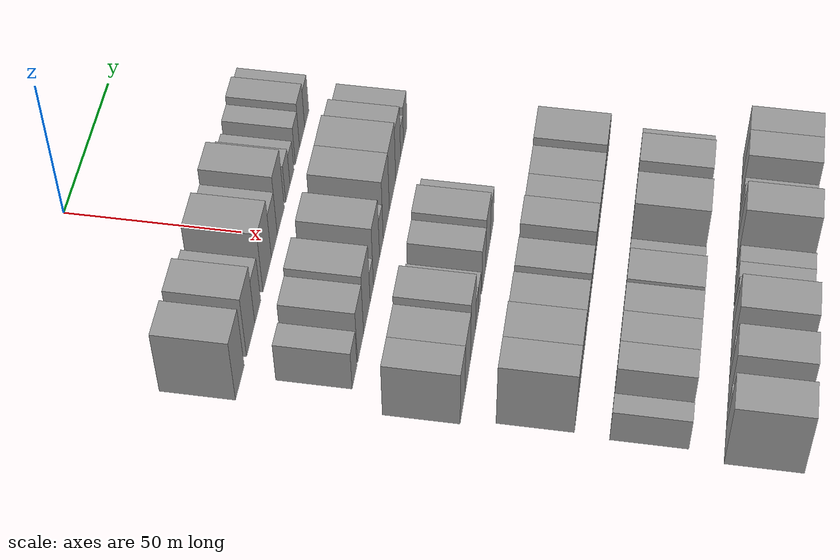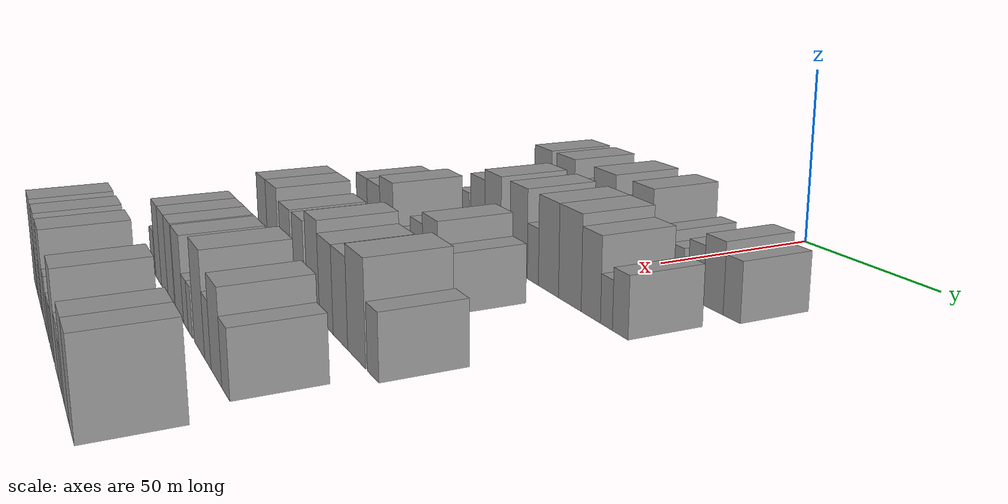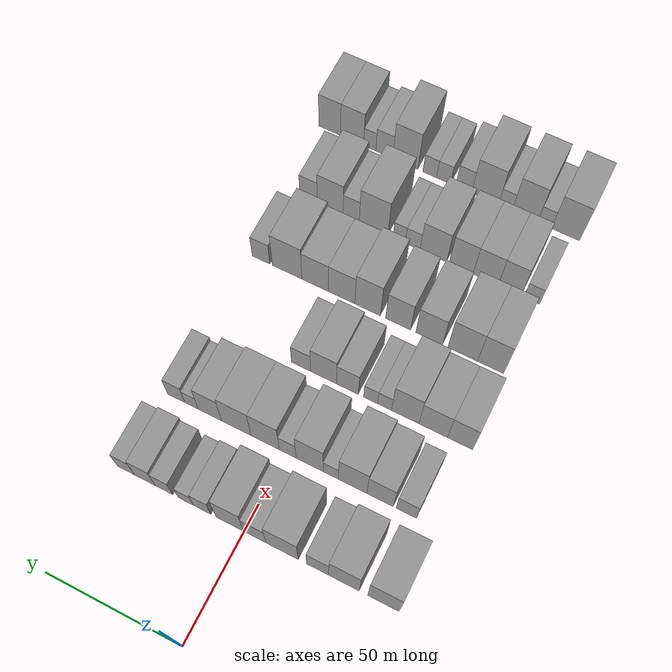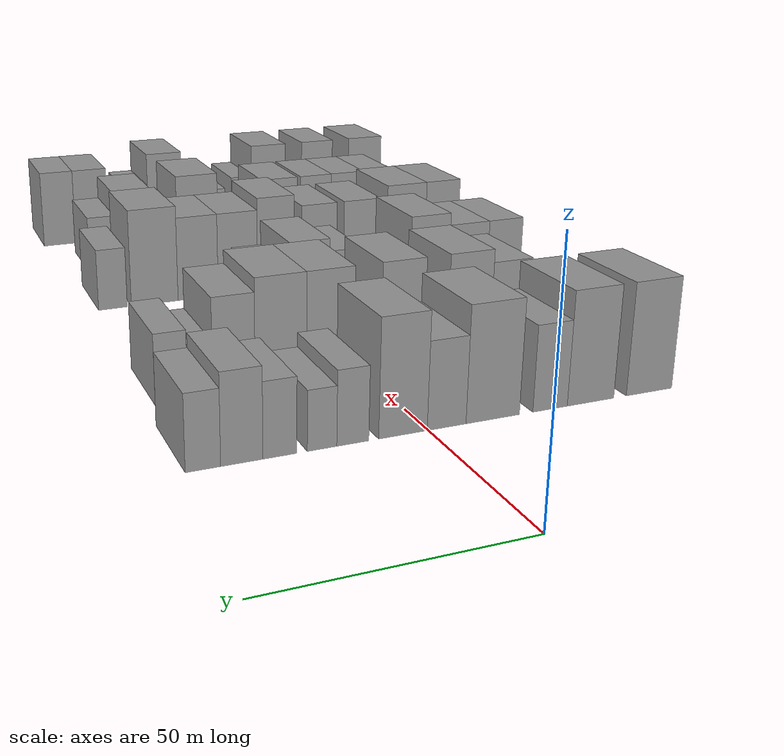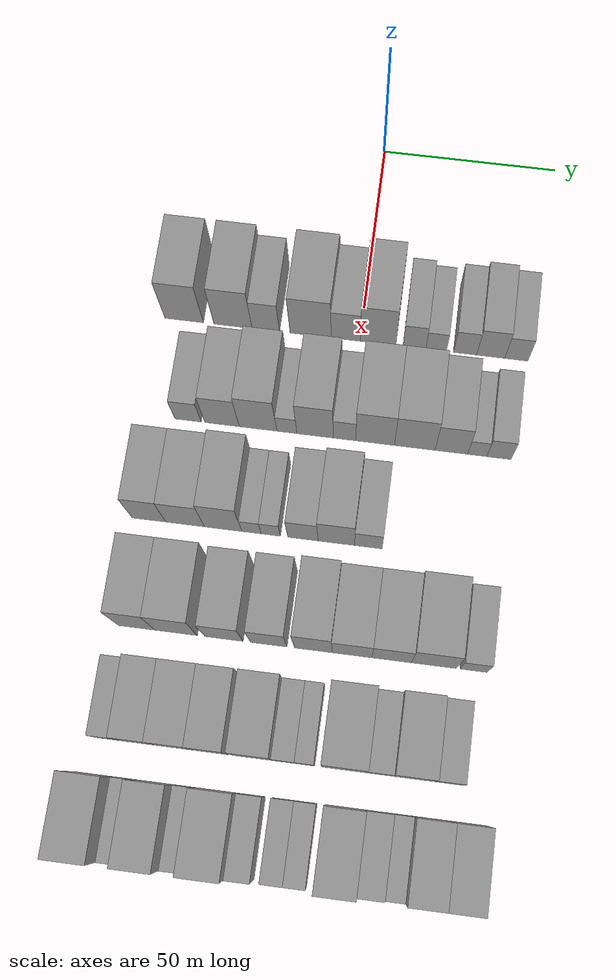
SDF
<sdf version="1.6">
 <world name="default">
  <model name="building_50">
   <static>1</static>
   <pose>50.0000 -49.7501 0 0.000000 0.000000 0.000000</pose>
   <link name="link">
    <pose>0 0 12.00 0 0 0</pose>
    <collision name="collision"><geometry><box><size>20.0000 10.9593 24.0000</size></box></geometry></collision>
    <visual name="visual">
     <cast_shadows>0</cast_shadows>
     <geometry><box><size>20.0000 10.9593 24.0000</size></box></geometry>
     <material>
      <script>
       <uri>model://grey_wall/materials/scripts</uri>
       <uri>model://grey_wall/materials/textures</uri>
       <name>vrc/grey_wall</name>
      </script>
     </material>
    </visual>
   </link>
  </model>
  <model name="building_51">
   <static>1</static>
   <pose>50.0000 -35.8641 0 0.000000 0.000000 0.000000</pose>
   <link name="link">
    <pose>0 0 12.00 0 0 0</pose>
    <collision name="collision"><geometry><box><size>20.0000 10.8127 24.0000</size></box></geometry></collision>
    <visual name="visual">
     <cast_shadows>0</cast_shadows>
     <geometry><box><size>20.0000 10.8127 24.0000</size></box></geometry>
     <material>
      <script>
       <uri>model://grey_wall/materials/scripts</uri>
       <uri>model://grey_wall/materials/textures</uri>
       <name>vrc/grey_wall</name>
      </script>
     </material>
    </visual>
   </link>
  </model>
  <model name="building_52">
   <static>1</static>
   <pose>50.0000 -26.5562 0 0.000000 0.000000 0.000000</pose>
   <link name="link">
    <pose>0 0 9.00 0 0 0</pose>
    <collision name="collision"><geometry><box><size>20.0000 7.8030 18.0000</size></box></geometry></collision>
    <visual name="visual">
     <cast_shadows>0</cast_shadows>
     <geometry><box><size>20.0000 7.8030 18.0000</size></box></geometry>
     <material>
      <script>
       <uri>model://grey_wall/materials/scripts</uri>
       <uri>model://grey_wall/materials/textures</uri>
       <name>vrc/grey_wall</name>
      </script>
     </material>
    </visual>
   </link>
  </model>
  <model name="building_53">
   <static>1</static>
   <pose>50.0000 -13.8283 0 0.000000 0.000000 0.000000</pose>
   <link name="link">
    <pose>0 0 12.00 0 0 0</pose>
    <collision name="collision"><geometry><box><size>20.0000 11.6527 24.0000</size></box></geometry></collision>
    <visual name="visual">
     <cast_shadows>0</cast_shadows>
     <geometry><box><size>20.0000 11.6527 24.0000</size></box></geometry>
     <material>
      <script>
       <uri>model://grey_wall/materials/scripts</uri>
       <uri>model://grey_wall/materials/textures</uri>
       <name>vrc/grey_wall</name>
      </script>
     </material>
    </visual>
   </link>
  </model>
  <model name="building_54">
   <static>1</static>
   <pose>50.0000 -3.8962 0 0.000000 0.000000 0.000000</pose>
   <link name="link">
    <pose>0 0 9.00 0 0 0</pose>
    <collision name="collision"><geometry><box><size>20.0000 8.2115 18.0000</size></box></geometry></collision>
    <visual name="visual">
     <cast_shadows>0</cast_shadows>
     <geometry><box><size>20.0000 8.2115 18.0000</size></box></geometry>
     <material>
      <script>
       <uri>model://grey_wall/materials/scripts</uri>
       <uri>model://grey_wall/materials/textures</uri>
       <name>vrc/grey_wall</name>
      </script>
     </material>
    </visual>
   </link>
  </model>
  <model name="building_55">
   <static>1</static>
   <pose>50.0000 5.2146 0 0.000000 0.000000 0.000000</pose>
   <link name="link">
    <pose>0 0 12.00 0 0 0</pose>
    <collision name="collision"><geometry><box><size>20.0000 10.0101 24.0000</size></box></geometry></collision>
    <visual name="visual">
     <cast_shadows>0</cast_shadows>
     <geometry><box><size>20.0000 10.0101 24.0000</size></box></geometry>
     <material>
      <script>
       <uri>model://grey_wall/materials/scripts</uri>
       <uri>model://grey_wall/materials/textures</uri>
       <name>vrc/grey_wall</name>
      </script>
     </material>
    </visual>
   </link>
  </model>
  <model name="building_56">
   <static>1</static>
   <pose>50.0000 15.4160 0 0.000000 0.000000 0.000000</pose>
   <link name="link">
    <pose>0 0 7.50 0 0 0</pose>
    <collision name="collision"><geometry><box><size>20.0000 6.3928 15.0000</size></box></geometry></collision>
    <visual name="visual">
     <cast_shadows>0</cast_shadows>
     <geometry><box><size>20.0000 6.3928 15.0000</size></box></geometry>
     <material>
      <script>
       <uri>model://grey_wall/materials/scripts</uri>
       <uri>model://grey_wall/materials/textures</uri>
       <name>vrc/grey_wall</name>
      </script>
     </material>
    </visual>
   </link>
  </model>
  <model name="building_57">
   <static>1</static>
   <pose>50.0000 21.5016 0 0.000000 0.000000 0.000000</pose>
   <link name="link">
    <pose>0 0 6.00 0 0 0</pose>
    <collision name="collision"><geometry><box><size>20.0000 5.7785 12.0000</size></box></geometry></collision>
    <visual name="visual">
     <cast_shadows>0</cast_shadows>
     <geometry><box><size>20.0000 5.7785 12.0000</size></box></geometry>
     <material>
      <script>
       <uri>model://grey_wall/materials/scripts</uri>
       <uri>model://grey_wall/materials/textures</uri>
       <name>vrc/grey_wall</name>
      </script>
     </material>
    </visual>
   </link>
  </model>
  <model name="building_58">
   <static>1</static>
   <pose>50.0000 29.6361 0 0.000000 0.000000 0.000000</pose>
   <link name="link">
    <pose>0 0 7.50 0 0 0</pose>
    <collision name="collision"><geometry><box><size>20.0000 6.4904 15.0000</size></box></geometry></collision>
    <visual name="visual">
     <cast_shadows>0</cast_shadows>
     <geometry><box><size>20.0000 6.4904 15.0000</size></box></geometry>
     <material>
      <script>
       <uri>model://grey_wall/materials/scripts</uri>
       <uri>model://grey_wall/materials/textures</uri>
       <name>vrc/grey_wall</name>
      </script>
     </material>
    </visual>
   </link>
  </model>
  <model name="building_59">
   <static>1</static>
   <pose>50.0000 36.8214 0 0.000000 0.000000 0.000000</pose>
   <link name="link">
    <pose>0 0 9.00 0 0 0</pose>
    <collision name="collision"><geometry><box><size>20.0000 7.8803 18.0000</size></box></geometry></collision>
    <visual name="visual">
     <cast_shadows>0</cast_shadows>
     <geometry><box><size>20.0000 7.8803 18.0000</size></box></geometry>
     <material>
      <script>
       <uri>model://grey_wall/materials/scripts</uri>
       <uri>model://grey_wall/materials/textures</uri>
       <name>vrc/grey_wall</name>
      </script>
     </material>
    </visual>
   </link>
  </model>
  <model name="building_60">
   <static>1</static>
   <pose>50.0000 44.0002 0 0.000000 0.000000 0.000000</pose>
   <link name="link">
    <pose>0 0 7.50 0 0 0</pose>
    <collision name="collision"><geometry><box><size>20.0000 6.4773 15.0000</size></box></geometry></collision>
    <visual name="visual">
     <cast_shadows>0</cast_shadows>
     <geometry><box><size>20.0000 6.4773 15.0000</size></box></geometry>
     <material>
      <script>
       <uri>model://grey_wall/materials/scripts</uri>
       <uri>model://grey_wall/materials/textures</uri>
       <name>vrc/grey_wall</name>
      </script>
     </material>
    </visual>
   </link>
  </model>
  <model name="building_166">
   <static>1</static>
   <pose>79.0000 -43.9204 0 0.000000 0.000000 0.000000</pose>
   <link name="link">
    <pose>0 0 7.50 0 0 0</pose>
    <collision name="collision"><geometry><box><size>20.0000 7.3100 15.0000</size></box></geometry></collision>
    <visual name="visual">
     <cast_shadows>0</cast_shadows>
     <geometry><box><size>20.0000 7.3100 15.0000</size></box></geometry>
     <material>
      <script>
       <uri>model://grey_wall/materials/scripts</uri>
       <uri>model://grey_wall/materials/textures</uri>
       <name>vrc/grey_wall</name>
      </script>
     </material>
    </visual>
   </link>
  </model>
  <model name="building_167">
   <static>1</static>
   <pose>79.0000 -34.4893 0 0.000000 0.000000 0.000000</pose>
   <link name="link">
    <pose>0 0 10.50 0 0 0</pose>
    <collision name="collision"><geometry><box><size>20.0000 9.5522 21.0000</size></box></geometry></collision>
    <visual name="visual">
     <cast_shadows>0</cast_shadows>
     <geometry><box><size>20.0000 9.5522 21.0000</size></box></geometry>
     <material>
      <script>
       <uri>model://grey_wall/materials/scripts</uri>
       <uri>model://grey_wall/materials/textures</uri>
       <name>vrc/grey_wall</name>
      </script>
     </material>
    </visual>
   </link>
  </model>
  <model name="building_168">
   <static>1</static>
   <pose>79.0000 -24.4918 0 0.000000 0.000000 0.000000</pose>
   <link name="link">
    <pose>0 0 12.00 0 0 0</pose>
    <collision name="collision"><geometry><box><size>20.0000 10.4428 24.0000</size></box></geometry></collision>
    <visual name="visual">
     <cast_shadows>0</cast_shadows>
     <geometry><box><size>20.0000 10.4428 24.0000</size></box></geometry>
     <material>
      <script>
       <uri>model://grey_wall/materials/scripts</uri>
       <uri>model://grey_wall/materials/textures</uri>
       <name>vrc/grey_wall</name>
      </script>
     </material>
    </visual>
   </link>
  </model>
  <model name="building_169">
   <static>1</static>
   <pose>79.0000 -16.5042 0 0.000000 0.000000 0.000000</pose>
   <link name="link">
    <pose>0 0 6.00 0 0 0</pose>
    <collision name="collision"><geometry><box><size>20.0000 5.5323 12.0000</size></box></geometry></collision>
    <visual name="visual">
     <cast_shadows>0</cast_shadows>
     <geometry><box><size>20.0000 5.5323 12.0000</size></box></geometry>
     <material>
      <script>
       <uri>model://grey_wall/materials/scripts</uri>
       <uri>model://grey_wall/materials/textures</uri>
       <name>vrc/grey_wall</name>
      </script>
     </material>
    </visual>
   </link>
  </model>
  <model name="building_170">
   <static>1</static>
   <pose>79.0000 -8.7100 0 0.000000 0.000000 0.000000</pose>
   <link name="link">
    <pose>0 0 12.00 0 0 0</pose>
    <collision name="collision"><geometry><box><size>20.0000 10.0562 24.0000</size></box></geometry></collision>
    <visual name="visual">
     <cast_shadows>0</cast_shadows>
     <geometry><box><size>20.0000 10.0562 24.0000</size></box></geometry>
     <material>
      <script>
       <uri>model://grey_wall/materials/scripts</uri>
       <uri>model://grey_wall/materials/textures</uri>
       <name>vrc/grey_wall</name>
      </script>
     </material>
    </visual>
   </link>
  </model>
  <model name="building_171">
   <static>1</static>
   <pose>79.0000 -0.5841 0 0.000000 0.000000 0.000000</pose>
   <link name="link">
    <pose>0 0 7.50 0 0 0</pose>
    <collision name="collision"><geometry><box><size>20.0000 6.1955 15.0000</size></box></geometry></collision>
    <visual name="visual">
     <cast_shadows>0</cast_shadows>
     <geometry><box><size>20.0000 6.1955 15.0000</size></box></geometry>
     <material>
      <script>
       <uri>model://grey_wall/materials/scripts</uri>
       <uri>model://grey_wall/materials/textures</uri>
       <name>vrc/grey_wall</name>
      </script>
     </material>
    </visual>
   </link>
  </model>
  <model name="building_172">
   <static>1</static>
   <pose>79.0000 7.8289 0 0.000000 0.000000 0.000000</pose>
   <link name="link">
    <pose>0 0 12.00 0 0 0</pose>
    <collision name="collision"><geometry><box><size>20.0000 10.6306 24.0000</size></box></geometry></collision>
    <visual name="visual">
     <cast_shadows>0</cast_shadows>
     <geometry><box><size>20.0000 10.6306 24.0000</size></box></geometry>
     <material>
      <script>
       <uri>model://grey_wall/materials/scripts</uri>
       <uri>model://grey_wall/materials/textures</uri>
       <name>vrc/grey_wall</name>
      </script>
     </material>
    </visual>
   </link>
  </model>
  <model name="building_173">
   <static>1</static>
   <pose>79.0000 18.7126 0 0.000000 0.000000 0.000000</pose>
   <link name="link">
    <pose>0 0 12.00 0 0 0</pose>
    <collision name="collision"><geometry><box><size>20.0000 11.1369 24.0000</size></box></geometry></collision>
    <visual name="visual">
     <cast_shadows>0</cast_shadows>
     <geometry><box><size>20.0000 11.1369 24.0000</size></box></geometry>
     <material>
      <script>
       <uri>model://grey_wall/materials/scripts</uri>
       <uri>model://grey_wall/materials/textures</uri>
       <name>vrc/grey_wall</name>
      </script>
     </material>
    </visual>
   </link>
  </model>
  <model name="building_174">
   <static>1</static>
   <pose>79.0000 28.7517 0 0.000000 0.000000 0.000000</pose>
   <link name="link">
    <pose>0 0 10.50 0 0 0</pose>
    <collision name="collision"><geometry><box><size>20.0000 8.9412 21.0000</size></box></geometry></collision>
    <visual name="visual">
     <cast_shadows>0</cast_shadows>
     <geometry><box><size>20.0000 8.9412 21.0000</size></box></geometry>
     <material>
      <script>
       <uri>model://grey_wall/materials/scripts</uri>
       <uri>model://grey_wall/materials/textures</uri>
       <name>vrc/grey_wall</name>
      </script>
     </material>
    </visual>
   </link>
  </model>
  <model name="building_175">
   <static>1</static>
   <pose>79.0000 35.8405 0 0.000000 0.000000 0.000000</pose>
   <link name="link">
    <pose>0 0 6.00 0 0 0</pose>
    <collision name="collision"><geometry><box><size>20.0000 5.2366 12.0000</size></box></geometry></collision>
    <visual name="visual">
     <cast_shadows>0</cast_shadows>
     <geometry><box><size>20.0000 5.2366 12.0000</size></box></geometry>
     <material>
      <script>
       <uri>model://grey_wall/materials/scripts</uri>
       <uri>model://grey_wall/materials/textures</uri>
       <name>vrc/grey_wall</name>
      </script>
     </material>
    </visual>
   </link>
  </model>
  <model name="building_176">
   <static>1</static>
   <pose>79.0000 41.7694 0 0.000000 0.000000 0.000000</pose>
   <link name="link">
    <pose>0 0 7.50 0 0 0</pose>
    <collision name="collision"><geometry><box><size>20.0000 6.6211 15.0000</size></box></geometry></collision>
    <visual name="visual">
     <cast_shadows>0</cast_shadows>
     <geometry><box><size>20.0000 6.6211 15.0000</size></box></geometry>
     <material>
      <script>
       <uri>model://grey_wall/materials/scripts</uri>
       <uri>model://grey_wall/materials/textures</uri>
       <name>vrc/grey_wall</name>
      </script>
     </material>
    </visual>
   </link>
  </model>
  <model name="building_281">
   <static>1</static>
   <pose>108.0000 -49.8427 0 0.000000 0.000000 0.000000</pose>
   <link name="link">
    <pose>0 0 10.50 0 0 0</pose>
    <collision name="collision"><geometry><box><size>20.0000 9.1666 21.0000</size></box></geometry></collision>
    <visual name="visual">
     <cast_shadows>0</cast_shadows>
     <geometry><box><size>20.0000 9.1666 21.0000</size></box></geometry>
     <material>
      <script>
       <uri>model://grey_wall/materials/scripts</uri>
       <uri>model://grey_wall/materials/textures</uri>
       <name>vrc/grey_wall</name>
      </script>
     </material>
    </visual>
   </link>
  </model>
  <model name="building_282">
   <static>1</static>
   <pose>108.0000 -40.0151 0 0.000000 0.000000 0.000000</pose>
   <link name="link">
    <pose>0 0 10.50 0 0 0</pose>
    <collision name="collision"><geometry><box><size>20.0000 10.4887 21.0000</size></box></geometry></collision>
    <visual name="visual">
     <cast_shadows>0</cast_shadows>
     <geometry><box><size>20.0000 10.4887 21.0000</size></box></geometry>
     <material>
      <script>
       <uri>model://grey_wall/materials/scripts</uri>
       <uri>model://grey_wall/materials/textures</uri>
       <name>vrc/grey_wall</name>
      </script>
     </material>
    </visual>
   </link>
  </model>
  <model name="building_283">
   <static>1</static>
   <pose>108.0000 -29.6814 0 0.000000 0.000000 0.000000</pose>
   <link name="link">
    <pose>0 0 12.00 0 0 0</pose>
    <collision name="collision"><geometry><box><size>20.0000 10.1786 24.0000</size></box></geometry></collision>
    <visual name="visual">
     <cast_shadows>0</cast_shadows>
     <geometry><box><size>20.0000 10.1786 24.0000</size></box></geometry>
     <material>
      <script>
       <uri>model://grey_wall/materials/scripts</uri>
       <uri>model://grey_wall/materials/textures</uri>
       <name>vrc/grey_wall</name>
      </script>
     </material>
    </visual>
   </link>
  </model>
  <model name="building_284">
   <static>1</static>
   <pose>108.0000 -21.9924 0 0.000000 0.000000 0.000000</pose>
   <link name="link">
    <pose>0 0 6.00 0 0 0</pose>
    <collision name="collision"><geometry><box><size>20.0000 5.1992 12.0000</size></box></geometry></collision>
    <visual name="visual">
     <cast_shadows>0</cast_shadows>
     <geometry><box><size>20.0000 5.1992 12.0000</size></box></geometry>
     <material>
      <script>
       <uri>model://grey_wall/materials/scripts</uri>
       <uri>model://grey_wall/materials/textures</uri>
       <name>vrc/grey_wall</name>
      </script>
     </material>
    </visual>
   </link>
  </model>
  <model name="building_285">
   <static>1</static>
   <pose>108.0000 -16.7967 0 0.000000 0.000000 0.000000</pose>
   <link name="link">
    <pose>0 0 6.00 0 0 0</pose>
    <collision name="collision"><geometry><box><size>20.0000 5.1923 12.0000</size></box></geometry></collision>
    <visual name="visual">
     <cast_shadows>0</cast_shadows>
     <geometry><box><size>20.0000 5.1923 12.0000</size></box></geometry>
     <material>
      <script>
       <uri>model://grey_wall/materials/scripts</uri>
       <uri>model://grey_wall/materials/textures</uri>
       <name>vrc/grey_wall</name>
      </script>
     </material>
    </visual>
   </link>
  </model>
  <model name="building_286">
   <static>1</static>
   <pose>108.0000 -8.1051 0 0.000000 0.000000 0.000000</pose>
   <link name="link">
    <pose>0 0 9.00 0 0 0</pose>
    <collision name="collision"><geometry><box><size>20.0000 8.1909 18.0000</size></box></geometry></collision>
    <visual name="visual">
     <cast_shadows>0</cast_shadows>
     <geometry><box><size>20.0000 8.1909 18.0000</size></box></geometry>
     <material>
      <script>
       <uri>model://grey_wall/materials/scripts</uri>
       <uri>model://grey_wall/materials/textures</uri>
       <name>vrc/grey_wall</name>
      </script>
     </material>
    </visual>
   </link>
  </model>
  <model name="building_287">
   <static>1</static>
   <pose>108.0000 0.8956 0 0.000000 0.000000 0.000000</pose>
   <link name="link">
    <pose>0 0 10.50 0 0 0</pose>
    <collision name="collision"><geometry><box><size>20.0000 9.8105 21.0000</size></box></geometry></collision>
    <visual name="visual">
     <cast_shadows>0</cast_shadows>
     <geometry><box><size>20.0000 9.8105 21.0000</size></box></geometry>
     <material>
      <script>
       <uri>model://grey_wall/materials/scripts</uri>
       <uri>model://grey_wall/materials/textures</uri>
       <name>vrc/grey_wall</name>
      </script>
     </material>
    </visual>
   </link>
  </model>
  <model name="building_288">
   <static>1</static>
   <pose>108.0000 9.4879 0 0.000000 0.000000 0.000000</pose>
   <link name="link">
    <pose>0 0 7.50 0 0 0</pose>
    <collision name="collision"><geometry><box><size>20.0000 7.3741 15.0000</size></box></geometry></collision>
    <visual name="visual">
     <cast_shadows>0</cast_shadows>
     <geometry><box><size>20.0000 7.3741 15.0000</size></box></geometry>
     <material>
      <script>
       <uri>model://grey_wall/materials/scripts</uri>
       <uri>model://grey_wall/materials/textures</uri>
       <name>vrc/grey_wall</name>
      </script>
     </material>
    </visual>
   </link>
  </model>
  <model name="building_389">
   <static>1</static>
   <pose>137.0000 -48.0488 0 0.000000 0.000000 0.000000</pose>
   <link name="link">
    <pose>0 0 12.00 0 0 0</pose>
    <collision name="collision"><geometry><box><size>20.0000 9.7121 24.0000</size></box></geometry></collision>
    <visual name="visual">
     <cast_shadows>0</cast_shadows>
     <geometry><box><size>20.0000 9.7121 24.0000</size></box></geometry>
     <material>
      <script>
       <uri>model://grey_wall/materials/scripts</uri>
       <uri>model://grey_wall/materials/textures</uri>
       <name>vrc/grey_wall</name>
      </script>
     </material>
    </visual>
   </link>
  </model>
  <model name="building_390">
   <static>1</static>
   <pose>137.0000 -37.6220 0 0.000000 0.000000 0.000000</pose>
   <link name="link">
    <pose>0 0 12.00 0 0 0</pose>
    <collision name="collision"><geometry><box><size>20.0000 11.1416 24.0000</size></box></geometry></collision>
    <visual name="visual">
     <cast_shadows>0</cast_shadows>
     <geometry><box><size>20.0000 11.1416 24.0000</size></box></geometry>
     <material>
      <script>
       <uri>model://grey_wall/materials/scripts</uri>
       <uri>model://grey_wall/materials/textures</uri>
       <name>vrc/grey_wall</name>
      </script>
     </material>
    </visual>
   </link>
  </model>
  <model name="building_391">
   <static>1</static>
   <pose>137.0000 -24.9964 0 0.000000 0.000000 0.000000</pose>
   <link name="link">
    <pose>0 0 10.50 0 0 0</pose>
    <collision name="collision"><geometry><box><size>20.0000 10.1095 21.0000</size></box></geometry></collision>
    <visual name="visual">
     <cast_shadows>0</cast_shadows>
     <geometry><box><size>20.0000 10.1095 21.0000</size></box></geometry>
     <material>
      <script>
       <uri>model://grey_wall/materials/scripts</uri>
       <uri>model://grey_wall/materials/textures</uri>
       <name>vrc/grey_wall</name>
      </script>
     </material>
    </visual>
   </link>
  </model>
  <model name="building_392">
   <static>1</static>
   <pose>137.0000 -13.1475 0 0.000000 0.000000 0.000000</pose>
   <link name="link">
    <pose>0 0 10.50 0 0 0</pose>
    <collision name="collision"><geometry><box><size>20.0000 9.5881 21.0000</size></box></geometry></collision>
    <visual name="visual">
     <cast_shadows>0</cast_shadows>
     <geometry><box><size>20.0000 9.5881 21.0000</size></box></geometry>
     <material>
      <script>
       <uri>model://grey_wall/materials/scripts</uri>
       <uri>model://grey_wall/materials/textures</uri>
       <name>vrc/grey_wall</name>
      </script>
     </material>
    </visual>
   </link>
  </model>
  <model name="building_393">
   <static>1</static>
   <pose>137.0000 -1.4034 0 0.000000 0.000000 0.000000</pose>
   <link name="link">
    <pose>0 0 12.00 0 0 0</pose>
    <collision name="collision"><geometry><box><size>20.0000 9.9001 24.0000</size></box></geometry></collision>
    <visual name="visual">
     <cast_shadows>0</cast_shadows>
     <geometry><box><size>20.0000 9.9001 24.0000</size></box></geometry>
     <material>
      <script>
       <uri>model://grey_wall/materials/scripts</uri>
       <uri>model://grey_wall/materials/textures</uri>
       <name>vrc/grey_wall</name>
      </script>
     </material>
    </visual>
   </link>
  </model>
  <model name="building_394">
   <static>1</static>
   <pose>137.0000 8.7396 0 0.000000 0.000000 0.000000</pose>
   <link name="link">
    <pose>0 0 10.50 0 0 0</pose>
    <collision name="collision"><geometry><box><size>20.0000 10.3859 21.0000</size></box></geometry></collision>
    <visual name="visual">
     <cast_shadows>0</cast_shadows>
     <geometry><box><size>20.0000 10.3859 21.0000</size></box></geometry>
     <material>
      <script>
       <uri>model://grey_wall/materials/scripts</uri>
       <uri>model://grey_wall/materials/textures</uri>
       <name>vrc/grey_wall</name>
      </script>
     </material>
    </visual>
   </link>
  </model>
  <model name="building_395">
   <static>1</static>
   <pose>137.0000 19.0999 0 0.000000 0.000000 0.000000</pose>
   <link name="link">
    <pose>0 0 10.50 0 0 0</pose>
    <collision name="collision"><geometry><box><size>20.0000 10.3346 21.0000</size></box></geometry></collision>
    <visual name="visual">
     <cast_shadows>0</cast_shadows>
     <geometry><box><size>20.0000 10.3346 21.0000</size></box></geometry>
     <material>
      <script>
       <uri>model://grey_wall/materials/scripts</uri>
       <uri>model://grey_wall/materials/textures</uri>
       <name>vrc/grey_wall</name>
      </script>
     </material>
    </visual>
   </link>
  </model>
  <model name="building_396">
   <static>1</static>
   <pose>137.0000 30.1317 0 0.000000 0.000000 0.000000</pose>
   <link name="link">
    <pose>0 0 12.00 0 0 0</pose>
    <collision name="collision"><geometry><box><size>20.0000 11.7290 24.0000</size></box></geometry></collision>
    <visual name="visual">
     <cast_shadows>0</cast_shadows>
     <geometry><box><size>20.0000 11.7290 24.0000</size></box></geometry>
     <material>
      <script>
       <uri>model://grey_wall/materials/scripts</uri>
       <uri>model://grey_wall/materials/textures</uri>
       <name>vrc/grey_wall</name>
      </script>
     </material>
    </visual>
   </link>
  </model>
  <model name="building_397">
   <static>1</static>
   <pose>137.0000 40.5135 0 0.000000 0.000000 0.000000</pose>
   <link name="link">
    <pose>0 0 7.50 0 0 0</pose>
    <collision name="collision"><geometry><box><size>20.0000 7.0347 15.0000</size></box></geometry></collision>
    <visual name="visual">
     <cast_shadows>0</cast_shadows>
     <geometry><box><size>20.0000 7.0347 15.0000</size></box></geometry>
     <material>
      <script>
       <uri>model://grey_wall/materials/scripts</uri>
       <uri>model://grey_wall/materials/textures</uri>
       <name>vrc/grey_wall</name>
      </script>
     </material>
    </visual>
   </link>
  </model>
  <model name="building_506">
   <static>1</static>
   <pose>166.0000 -50.8666 0 0.000000 0.000000 0.000000</pose>
   <link name="link">
    <pose>0 0 6.00 0 0 0</pose>
    <collision name="collision"><geometry><box><size>20.0000 5.9779 12.0000</size></box></geometry></collision>
    <visual name="visual">
     <cast_shadows>0</cast_shadows>
     <geometry><box><size>20.0000 5.9779 12.0000</size></box></geometry>
     <material>
      <script>
       <uri>model://grey_wall/materials/scripts</uri>
       <uri>model://grey_wall/materials/textures</uri>
       <name>vrc/grey_wall</name>
      </script>
     </material>
    </visual>
   </link>
  </model>
  <model name="building_507">
   <static>1</static>
   <pose>166.0000 -42.5154 0 0.000000 0.000000 0.000000</pose>
   <link name="link">
    <pose>0 0 10.50 0 0 0</pose>
    <collision name="collision"><geometry><box><size>20.0000 8.7244 21.0000</size></box></geometry></collision>
    <visual name="visual">
     <cast_shadows>0</cast_shadows>
     <geometry><box><size>20.0000 8.7244 21.0000</size></box></geometry>
     <material>
      <script>
       <uri>model://grey_wall/materials/scripts</uri>
       <uri>model://grey_wall/materials/textures</uri>
       <name>vrc/grey_wall</name>
      </script>
     </material>
    </visual>
   </link>
  </model>
  <model name="building_508">
   <static>1</static>
   <pose>166.0000 -33.3141 0 0.000000 0.000000 0.000000</pose>
   <link name="link">
    <pose>0 0 10.50 0 0 0</pose>
    <collision name="collision"><geometry><box><size>20.0000 9.6782 21.0000</size></box></geometry></collision>
    <visual name="visual">
     <cast_shadows>0</cast_shadows>
     <geometry><box><size>20.0000 9.6782 21.0000</size></box></geometry>
     <material>
      <script>
       <uri>model://grey_wall/materials/scripts</uri>
       <uri>model://grey_wall/materials/textures</uri>
       <name>vrc/grey_wall</name>
      </script>
     </material>
    </visual>
   </link>
  </model>
  <model name="building_509">
   <static>1</static>
   <pose>166.0000 -23.8594 0 0.000000 0.000000 0.000000</pose>
   <link name="link">
    <pose>0 0 10.50 0 0 0</pose>
    <collision name="collision"><geometry><box><size>20.0000 9.2313 21.0000</size></box></geometry></collision>
    <visual name="visual">
     <cast_shadows>0</cast_shadows>
     <geometry><box><size>20.0000 9.2313 21.0000</size></box></geometry>
     <material>
      <script>
       <uri>model://grey_wall/materials/scripts</uri>
       <uri>model://grey_wall/materials/textures</uri>
       <name>vrc/grey_wall</name>
      </script>
     </material>
    </visual>
   </link>
  </model>
  <model name="building_510">
   <static>1</static>
   <pose>166.0000 -13.0665 0 0.000000 0.000000 0.000000</pose>
   <link name="link">
    <pose>0 0 10.50 0 0 0</pose>
    <collision name="collision"><geometry><box><size>20.0000 10.3544 21.0000</size></box></geometry></collision>
    <visual name="visual">
     <cast_shadows>0</cast_shadows>
     <geometry><box><size>20.0000 10.3544 21.0000</size></box></geometry>
     <material>
      <script>
       <uri>model://grey_wall/materials/scripts</uri>
       <uri>model://grey_wall/materials/textures</uri>
       <name>vrc/grey_wall</name>
      </script>
     </material>
    </visual>
   </link>
  </model>
  <model name="building_511">
   <static>1</static>
   <pose>166.0000 -4.9619 0 0.000000 0.000000 0.000000</pose>
   <link name="link">
    <pose>0 0 6.00 0 0 0</pose>
    <collision name="collision"><geometry><box><size>20.0000 5.8547 12.0000</size></box></geometry></collision>
    <visual name="visual">
     <cast_shadows>0</cast_shadows>
     <geometry><box><size>20.0000 5.8547 12.0000</size></box></geometry>
     <material>
      <script>
       <uri>model://grey_wall/materials/scripts</uri>
       <uri>model://grey_wall/materials/textures</uri>
       <name>vrc/grey_wall</name>
      </script>
     </material>
    </visual>
   </link>
  </model>
  <model name="building_512">
   <static>1</static>
   <pose>166.0000 0.3840 0 0.000000 0.000000 0.000000</pose>
   <link name="link">
    <pose>0 0 6.00 0 0 0</pose>
    <collision name="collision"><geometry><box><size>20.0000 4.8372 12.0000</size></box></geometry></collision>
    <visual name="visual">
     <cast_shadows>0</cast_shadows>
     <geometry><box><size>20.0000 4.8372 12.0000</size></box></geometry>
     <material>
      <script>
       <uri>model://grey_wall/materials/scripts</uri>
       <uri>model://grey_wall/materials/textures</uri>
       <name>vrc/grey_wall</name>
      </script>
     </material>
    </visual>
   </link>
  </model>
  <model name="building_513">
   <static>1</static>
   <pose>166.0000 10.5125 0 0.000000 0.000000 0.000000</pose>
   <link name="link">
    <pose>0 0 12.00 0 0 0</pose>
    <collision name="collision"><geometry><box><size>20.0000 11.4197 24.0000</size></box></geometry></collision>
    <visual name="visual">
     <cast_shadows>0</cast_shadows>
     <geometry><box><size>20.0000 11.4197 24.0000</size></box></geometry>
     <material>
      <script>
       <uri>model://grey_wall/materials/scripts</uri>
       <uri>model://grey_wall/materials/textures</uri>
       <name>vrc/grey_wall</name>
      </script>
     </material>
    </visual>
   </link>
  </model>
  <model name="building_514">
   <static>1</static>
   <pose>166.0000 19.4779 0 0.000000 0.000000 0.000000</pose>
   <link name="link">
    <pose>0 0 7.50 0 0 0</pose>
    <collision name="collision"><geometry><box><size>20.0000 6.5112 15.0000</size></box></geometry></collision>
    <visual name="visual">
     <cast_shadows>0</cast_shadows>
     <geometry><box><size>20.0000 6.5112 15.0000</size></box></geometry>
     <material>
      <script>
       <uri>model://grey_wall/materials/scripts</uri>
       <uri>model://grey_wall/materials/textures</uri>
       <name>vrc/grey_wall</name>
      </script>
     </material>
    </visual>
   </link>
  </model>
  <model name="building_515">
   <static>1</static>
   <pose>166.0000 27.8996 0 0.000000 0.000000 0.000000</pose>
   <link name="link">
    <pose>0 0 10.50 0 0 0</pose>
    <collision name="collision"><geometry><box><size>20.0000 10.3321 21.0000</size></box></geometry></collision>
    <visual name="visual">
     <cast_shadows>0</cast_shadows>
     <geometry><box><size>20.0000 10.3321 21.0000</size></box></geometry>
     <material>
      <script>
       <uri>model://grey_wall/materials/scripts</uri>
       <uri>model://grey_wall/materials/textures</uri>
       <name>vrc/grey_wall</name>
      </script>
     </material>
    </visual>
   </link>
  </model>
  <model name="building_516">
   <static>1</static>
   <pose>166.0000 36.6329 0 0.000000 0.000000 0.000000</pose>
   <link name="link">
    <pose>0 0 7.50 0 0 0</pose>
    <collision name="collision"><geometry><box><size>20.0000 7.1344 15.0000</size></box></geometry></collision>
    <visual name="visual">
     <cast_shadows>0</cast_shadows>
     <geometry><box><size>20.0000 7.1344 15.0000</size></box></geometry>
     <material>
      <script>
       <uri>model://grey_wall/materials/scripts</uri>
       <uri>model://grey_wall/materials/textures</uri>
       <name>vrc/grey_wall</name>
      </script>
     </material>
    </visual>
   </link>
  </model>
  <model name="building_610">
   <static>1</static>
   <pose>195.0000 -51.5685 0 0.000000 0.000000 0.000000</pose>
   <link name="link">
    <pose>0 0 12.00 0 0 0</pose>
    <collision name="collision"><geometry><box><size>20.0000 10.8699 24.0000</size></box></geometry></collision>
    <visual name="visual">
     <cast_shadows>0</cast_shadows>
     <geometry><box><size>20.0000 10.8699 24.0000</size></box></geometry>
     <material>
      <script>
       <uri>model://grey_wall/materials/scripts</uri>
       <uri>model://grey_wall/materials/textures</uri>
       <name>vrc/grey_wall</name>
      </script>
     </material>
    </visual>
   </link>
  </model>
  <model name="building_611">
   <static>1</static>
   <pose>195.0000 -43.4697 0 0.000000 0.000000 0.000000</pose>
   <link name="link">
    <pose>0 0 6.00 0 0 0</pose>
    <collision name="collision"><geometry><box><size>20.0000 5.3277 12.0000</size></box></geometry></collision>
    <visual name="visual">
     <cast_shadows>0</cast_shadows>
     <geometry><box><size>20.0000 5.3277 12.0000</size></box></geometry>
     <material>
      <script>
       <uri>model://grey_wall/materials/scripts</uri>
       <uri>model://grey_wall/materials/textures</uri>
       <name>vrc/grey_wall</name>
      </script>
     </material>
    </visual>
   </link>
  </model>
  <model name="building_612">
   <static>1</static>
   <pose>195.0000 -35.8067 0 0.000000 0.000000 0.000000</pose>
   <link name="link">
    <pose>0 0 12.00 0 0 0</pose>
    <collision name="collision"><geometry><box><size>20.0000 9.9983 24.0000</size></box></geometry></collision>
    <visual name="visual">
     <cast_shadows>0</cast_shadows>
     <geometry><box><size>20.0000 9.9983 24.0000</size></box></geometry>
     <material>
      <script>
       <uri>model://grey_wall/materials/scripts</uri>
       <uri>model://grey_wall/materials/textures</uri>
       <name>vrc/grey_wall</name>
      </script>
     </material>
    </visual>
   </link>
  </model>
  <model name="building_613">
   <static>1</static>
   <pose>195.0000 -28.1556 0 0.000000 0.000000 0.000000</pose>
   <link name="link">
    <pose>0 0 6.00 0 0 0</pose>
    <collision name="collision"><geometry><box><size>20.0000 5.3038 12.0000</size></box></geometry></collision>
    <visual name="visual">
     <cast_shadows>0</cast_shadows>
     <geometry><box><size>20.0000 5.3038 12.0000</size></box></geometry>
     <material>
      <script>
       <uri>model://grey_wall/materials/scripts</uri>
       <uri>model://grey_wall/materials/textures</uri>
       <name>vrc/grey_wall</name>
      </script>
     </material>
    </visual>
   </link>
  </model>
  <model name="building_614">
   <static>1</static>
   <pose>195.0000 -20.1799 0 0.000000 0.000000 0.000000</pose>
   <link name="link">
    <pose>0 0 12.00 0 0 0</pose>
    <collision name="collision"><geometry><box><size>20.0000 10.6476 24.0000</size></box></geometry></collision>
    <visual name="visual">
     <cast_shadows>0</cast_shadows>
     <geometry><box><size>20.0000 10.6476 24.0000</size></box></geometry>
     <material>
      <script>
       <uri>model://grey_wall/materials/scripts</uri>
       <uri>model://grey_wall/materials/textures</uri>
       <name>vrc/grey_wall</name>
      </script>
     </material>
    </visual>
   </link>
  </model>
  <model name="building_615">
   <static>1</static>
   <pose>195.0000 -11.7022 0 0.000000 0.000000 0.000000</pose>
   <link name="link">
    <pose>0 0 7.50 0 0 0</pose>
    <collision name="collision"><geometry><box><size>20.0000 6.3077 15.0000</size></box></geometry></collision>
    <visual name="visual">
     <cast_shadows>0</cast_shadows>
     <geometry><box><size>20.0000 6.3077 15.0000</size></box></geometry>
     <material>
      <script>
       <uri>model://grey_wall/materials/scripts</uri>
       <uri>model://grey_wall/materials/textures</uri>
       <name>vrc/grey_wall</name>
      </script>
     </material>
    </visual>
   </link>
  </model>
  <model name="building_616">
   <static>1</static>
   <pose>195.0000 -3.7141 0 0.000000 0.000000 0.000000</pose>
   <link name="link">
    <pose>0 0 6.00 0 0 0</pose>
    <collision name="collision"><geometry><box><size>20.0000 5.6685 12.0000</size></box></geometry></collision>
    <visual name="visual">
     <cast_shadows>0</cast_shadows>
     <geometry><box><size>20.0000 5.6685 12.0000</size></box></geometry>
     <material>
      <script>
       <uri>model://grey_wall/materials/scripts</uri>
       <uri>model://grey_wall/materials/textures</uri>
       <name>vrc/grey_wall</name>
      </script>
     </material>
    </visual>
   </link>
  </model>
  <model name="building_617">
   <static>1</static>
   <pose>195.0000 1.8812 0 0.000000 0.000000 0.000000</pose>
   <link name="link">
    <pose>0 0 6.00 0 0 0</pose>
    <collision name="collision"><geometry><box><size>20.0000 5.5222 12.0000</size></box></geometry></collision>
    <visual name="visual">
     <cast_shadows>0</cast_shadows>
     <geometry><box><size>20.0000 5.5222 12.0000</size></box></geometry>
     <material>
      <script>
       <uri>model://grey_wall/materials/scripts</uri>
       <uri>model://grey_wall/materials/textures</uri>
       <name>vrc/grey_wall</name>
      </script>
     </material>
    </visual>
   </link>
  </model>
  <model name="building_618">
   <static>1</static>
   <pose>195.0000 11.7403 0 0.000000 0.000000 0.000000</pose>
   <link name="link">
    <pose>0 0 12.00 0 0 0</pose>
    <collision name="collision"><geometry><box><size>20.0000 10.1961 24.0000</size></box></geometry></collision>
    <visual name="visual">
     <cast_shadows>0</cast_shadows>
     <geometry><box><size>20.0000 10.1961 24.0000</size></box></geometry>
     <material>
      <script>
       <uri>model://grey_wall/materials/scripts</uri>
       <uri>model://grey_wall/materials/textures</uri>
       <name>vrc/grey_wall</name>
      </script>
     </material>
    </visual>
   </link>
  </model>
  <model name="building_619">
   <static>1</static>
   <pose>195.0000 20.3065 0 0.000000 0.000000 0.000000</pose>
   <link name="link">
    <pose>0 0 7.50 0 0 0</pose>
    <collision name="collision"><geometry><box><size>20.0000 6.9363 15.0000</size></box></geometry></collision>
    <visual name="visual">
     <cast_shadows>0</cast_shadows>
     <geometry><box><size>20.0000 6.9363 15.0000</size></box></geometry>
     <material>
      <script>
       <uri>model://grey_wall/materials/scripts</uri>
       <uri>model://grey_wall/materials/textures</uri>
       <name>vrc/grey_wall</name>
      </script>
     </material>
    </visual>
   </link>
  </model>
  <model name="building_620">
   <static>1</static>
   <pose>195.0000 26.2877 0 0.000000 0.000000 0.000000</pose>
   <link name="link">
    <pose>0 0 6.00 0 0 0</pose>
    <collision name="collision"><geometry><box><size>20.0000 5.0262 12.0000</size></box></geometry></collision>
    <visual name="visual">
     <cast_shadows>0</cast_shadows>
     <geometry><box><size>20.0000 5.0262 12.0000</size></box></geometry>
     <material>
      <script>
       <uri>model://grey_wall/materials/scripts</uri>
       <uri>model://grey_wall/materials/textures</uri>
       <name>vrc/grey_wall</name>
      </script>
     </material>
    </visual>
   </link>
  </model>
  <model name="building_621">
   <static>1</static>
   <pose>195.0000 33.5499 0 0.000000 0.000000 0.000000</pose>
   <link name="link">
    <pose>0 0 10.50 0 0 0</pose>
    <collision name="collision"><geometry><box><size>20.0000 9.4981 21.0000</size></box></geometry></collision>
    <visual name="visual">
     <cast_shadows>0</cast_shadows>
     <geometry><box><size>20.0000 9.4981 21.0000</size></box></geometry>
     <material>
      <script>
       <uri>model://grey_wall/materials/scripts</uri>
       <uri>model://grey_wall/materials/textures</uri>
       <name>vrc/grey_wall</name>
      </script>
     </material>
    </visual>
   </link>
  </model>
  <model name="building_622">
   <static>1</static>
   <pose>195.0000 42.7864 0 0.000000 0.000000 0.000000</pose>
   <link name="link">
    <pose>0 0 10.50 0 0 0</pose>
    <collision name="collision"><geometry><box><size>20.0000 8.9749 21.0000</size></box></geometry></collision>
    <visual name="visual">
     <cast_shadows>0</cast_shadows>
     <geometry><box><size>20.0000 8.9749 21.0000</size></box></geometry>
     <material>
      <script>
       <uri>model://grey_wall/materials/scripts</uri>
       <uri>model://grey_wall/materials/textures</uri>
       <name>vrc/grey_wall</name>
      </script>
     </material>
    </visual>
   </link>
  </model>
 </world>
</sdf>
